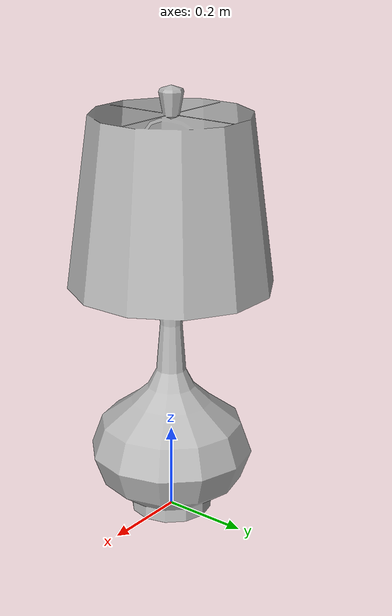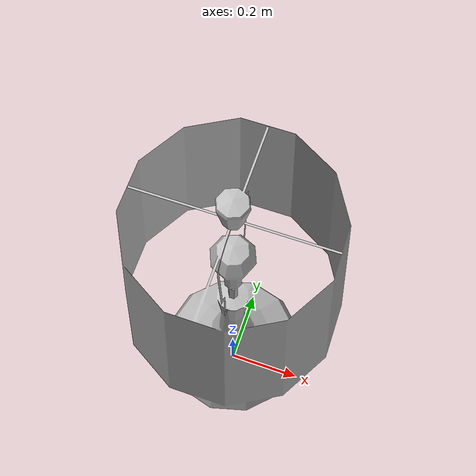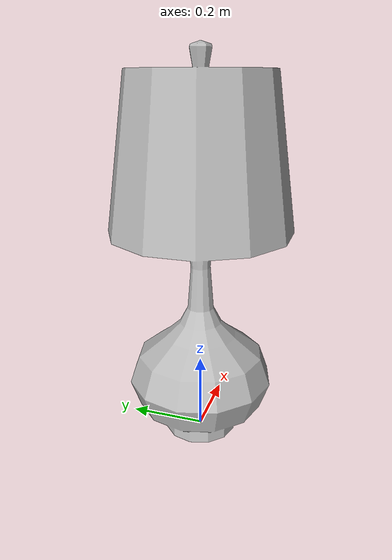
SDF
<?xml version="1.0" ?>
<sdf version="1.5">
  <model name="office_lamp">
    <static>true</static>
    <link name="link">
      <collision name="collision">
        <geometry>
          <mesh>
            <uri>model://office_lamp/meshes/office_lamp.dae</uri>
            <scale>1.4 1.4 1.4</scale>
          </mesh>
        </geometry>
      </collision>
      <visual name="visual">
        <geometry>
          <mesh>
            <uri>model://office_lamp/meshes/office_lamp.dae</uri>
            <scale>1.4 1.4 1.4</scale>
          </mesh>
        </geometry>
      </visual>
    </link>
  </model>
</sdf>
